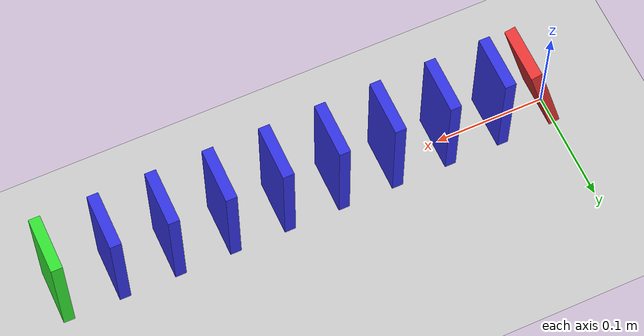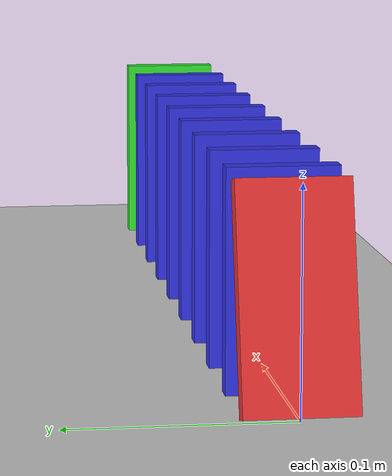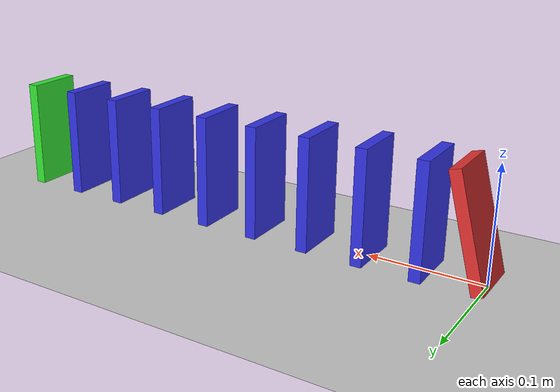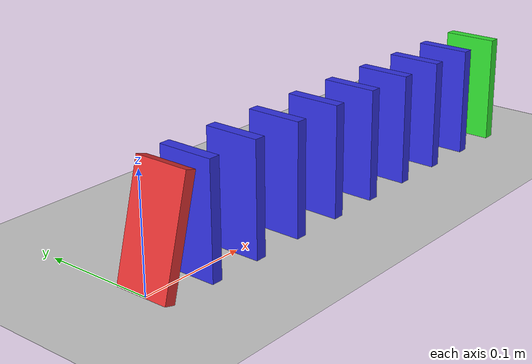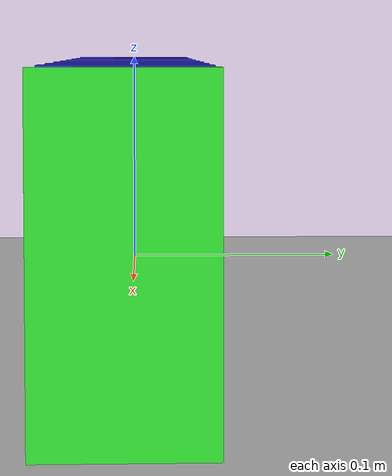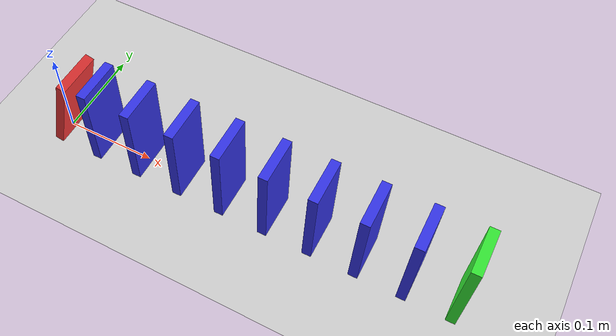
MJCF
<mujoco model="domino_chain">
  <option timestep="0.002" gravity="0 0 -9.81"/>
  <worldbody>
    <light name="sun" pos="0.25 -0.5 1.0" dir="0 0.5 -1" diffuse="0.8 0.8 0.8"/>
    <geom name="floor" type="plane" size="2 2 0.1" pos="0 0 0" rgba="0.8 0.8 0.8 1" friction="1 0.005 0.0001"/>

    <body name="domino1" pos="0.013111 0 0.049590" quat="0.991445 0 0.130526 0">
      <freejoint name="domino1_free"/>
      <geom name="domino1_geom" type="box" size="0.005 0.025 0.05" density="1000" friction="0.4 0.005 0.0001" rgba="0.9 0.2 0.2 1"/>
    </body>
    <body name="domino2" pos="0.05 0 0.05">
      <freejoint name="domino2_free"/>
      <geom name="domino2_geom" type="box" size="0.005 0.025 0.05" density="1000" friction="0.4 0.005 0.0001" rgba="0.2 0.2 0.9 1"/>
    </body>
    <body name="domino3" pos="0.10 0 0.05">
      <freejoint name="domino3_free"/>
      <geom name="domino3_geom" type="box" size="0.005 0.025 0.05" density="1000" friction="0.4 0.005 0.0001" rgba="0.2 0.2 0.9 1"/>
    </body>
    <body name="domino4" pos="0.15 0 0.05">
      <freejoint name="domino4_free"/>
      <geom name="domino4_geom" type="box" size="0.005 0.025 0.05" density="1000" friction="0.4 0.005 0.0001" rgba="0.2 0.2 0.9 1"/>
    </body>
    <body name="domino5" pos="0.20 0 0.05">
      <freejoint name="domino5_free"/>
      <geom name="domino5_geom" type="box" size="0.005 0.025 0.05" density="1000" friction="0.4 0.005 0.0001" rgba="0.2 0.2 0.9 1"/>
    </body>
    <body name="domino6" pos="0.25 0 0.05">
      <freejoint name="domino6_free"/>
      <geom name="domino6_geom" type="box" size="0.005 0.025 0.05" density="1000" friction="0.4 0.005 0.0001" rgba="0.2 0.2 0.9 1"/>
    </body>
    <body name="domino7" pos="0.30 0 0.05">
      <freejoint name="domino7_free"/>
      <geom name="domino7_geom" type="box" size="0.005 0.025 0.05" density="1000" friction="0.4 0.005 0.0001" rgba="0.2 0.2 0.9 1"/>
    </body>
    <body name="domino8" pos="0.35 0 0.05">
      <freejoint name="domino8_free"/>
      <geom name="domino8_geom" type="box" size="0.005 0.025 0.05" density="1000" friction="0.4 0.005 0.0001" rgba="0.2 0.2 0.9 1"/>
    </body>
    <body name="domino9" pos="0.40 0 0.05">
      <freejoint name="domino9_free"/>
      <geom name="domino9_geom" type="box" size="0.005 0.025 0.05" density="1000" friction="0.4 0.005 0.0001" rgba="0.2 0.2 0.9 1"/>
    </body>
    <body name="domino10" pos="0.45 0 0.05">
      <freejoint name="domino10_free"/>
      <geom name="domino10_geom" type="box" size="0.005 0.025 0.05" density="1000" friction="0.4 0.005 0.0001" rgba="0.2 0.9 0.2 1"/>
    </body>
  </worldbody>
</mujoco>
